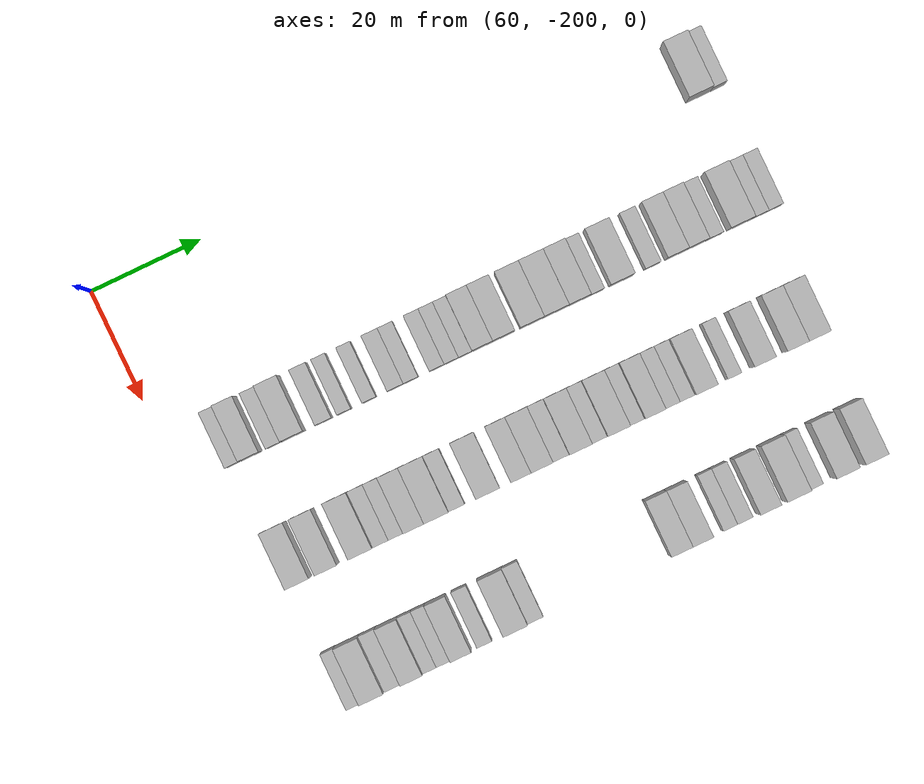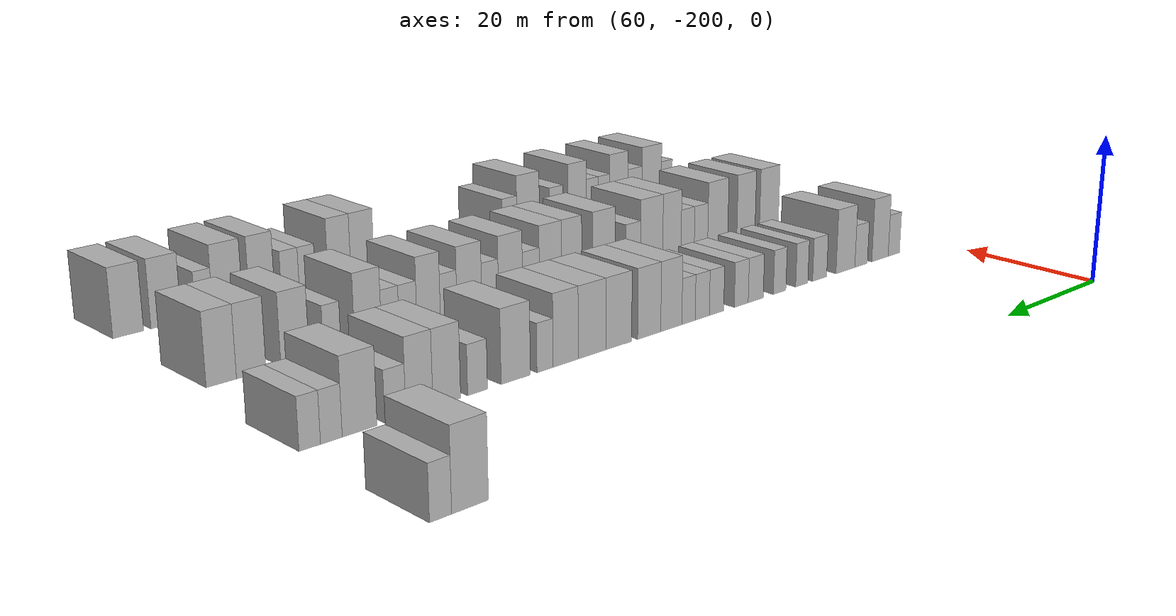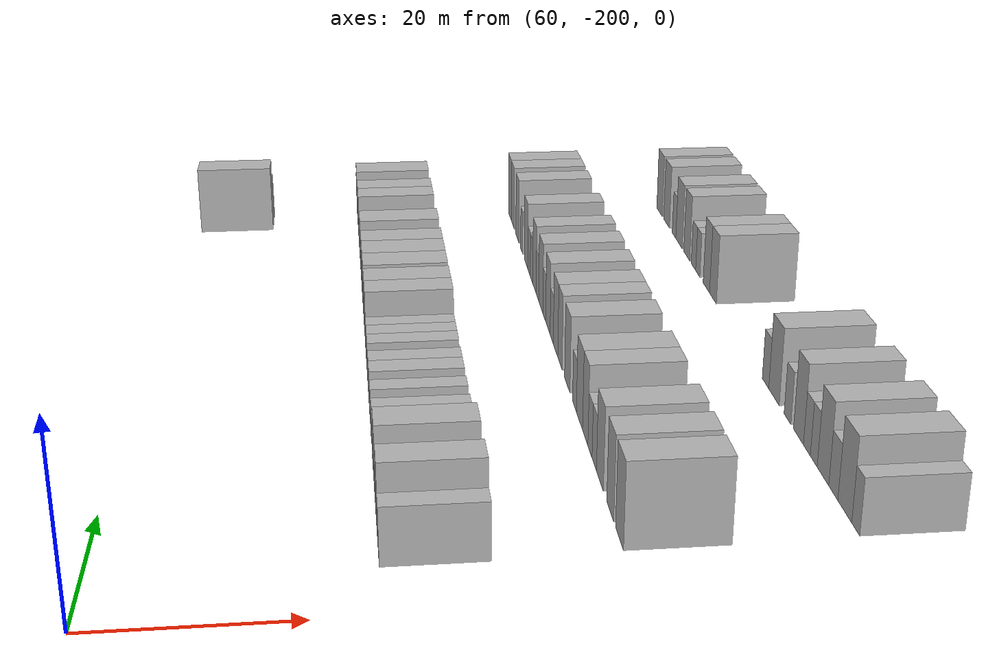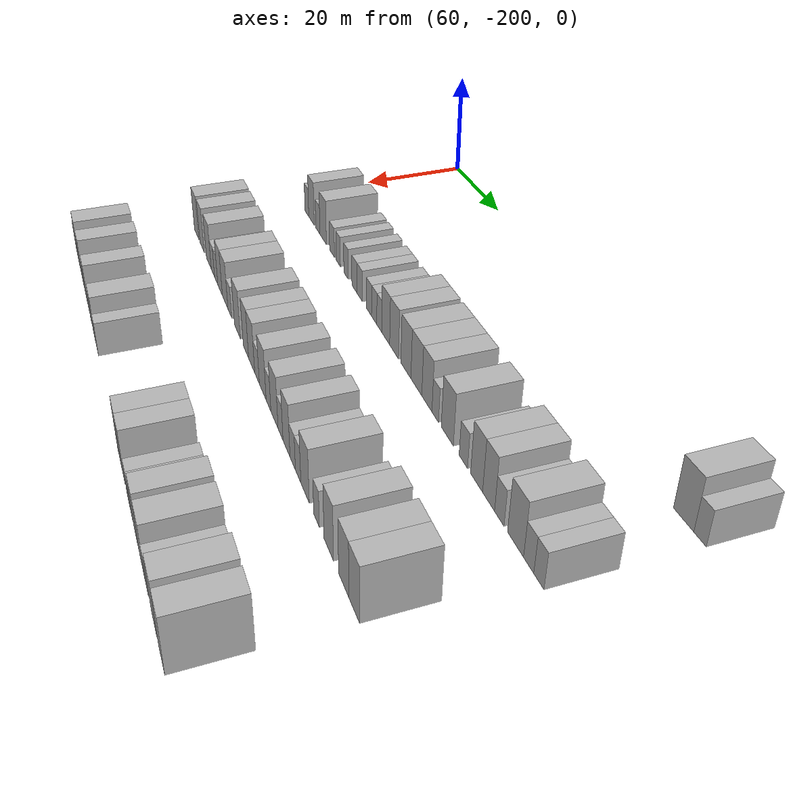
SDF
<sdf version="1.6">
 <world name="default">
  <model name="building_447">
   <static>1</static>
   <pose>69.0000 -95.7952 0 0.000000 0.000000 0.000000</pose>
   <link name="link">
    <pose>0 0 4.50 0 0 0</pose>
    <collision name="collision"><geometry><box><size>10.0000 4.4595 9.0000</size></box></geometry></collision>
    <visual name="visual">
     <cast_shadows>0</cast_shadows>
     <geometry><box><size>10.0000 4.4595 9.0000</size></box></geometry>
     <material>
      <script>
       <uri>model://HANNAS_wall/materials/scripts</uri>
       <uri>model://HANNAS_wall/materials/textures</uri>
       <name>vrc/HANNAS_wall</name>
      </script>
     </material>
    </visual>
   </link>
  </model>
  <model name="building_448">
   <static>1</static>
   <pose>69.0000 -92.2520 0 0.000000 0.000000 0.000000</pose>
   <link name="link">
    <pose>0 0 3.00 0 0 0</pose>
    <collision name="collision"><geometry><box><size>10.0000 2.6271 6.0000</size></box></geometry></collision>
    <visual name="visual">
     <cast_shadows>0</cast_shadows>
     <geometry><box><size>10.0000 2.6271 6.0000</size></box></geometry>
     <material>
      <script>
       <uri>model://HANNAS_wall/materials/scripts</uri>
       <uri>model://HANNAS_wall/materials/textures</uri>
       <name>vrc/HANNAS_wall</name>
      </script>
     </material>
    </visual>
   </link>
  </model>
  <model name="building_615">
   <static>1</static>
   <pose>91.0000 -190.7273 0 0.000000 0.000000 0.000000</pose>
   <link name="link">
    <pose>0 0 3.00 0 0 0</pose>
    <collision name="collision"><geometry><box><size>10.0000 2.6208 6.0000</size></box></geometry></collision>
    <visual name="visual">
     <cast_shadows>0</cast_shadows>
     <geometry><box><size>10.0000 2.6208 6.0000</size></box></geometry>
     <material>
      <script>
       <uri>model://HANNAS_wall/materials/scripts</uri>
       <uri>model://HANNAS_wall/materials/textures</uri>
       <name>vrc/HANNAS_wall</name>
      </script>
     </material>
    </visual>
   </link>
  </model>
  <model name="building_616">
   <static>1</static>
   <pose>91.0000 -187.5554 0 0.000000 0.000000 0.000000</pose>
   <link name="link">
    <pose>0 0 4.50 0 0 0</pose>
    <collision name="collision"><geometry><box><size>10.0000 3.7229 9.0000</size></box></geometry></collision>
    <visual name="visual">
     <cast_shadows>0</cast_shadows>
     <geometry><box><size>10.0000 3.7229 9.0000</size></box></geometry>
     <material>
      <script>
       <uri>model://HANNAS_wall/materials/scripts</uri>
       <uri>model://HANNAS_wall/materials/textures</uri>
       <name>vrc/HANNAS_wall</name>
      </script>
     </material>
    </visual>
   </link>
  </model>
  <model name="building_617">
   <static>1</static>
   <pose>91.0000 -183.2982 0 0.000000 0.000000 0.000000</pose>
   <link name="link">
    <pose>0 0 3.00 0 0 0</pose>
    <collision name="collision"><geometry><box><size>10.0000 2.7916 6.0000</size></box></geometry></collision>
    <visual name="visual">
     <cast_shadows>0</cast_shadows>
     <geometry><box><size>10.0000 2.7916 6.0000</size></box></geometry>
     <material>
      <script>
       <uri>model://HANNAS_wall/materials/scripts</uri>
       <uri>model://HANNAS_wall/materials/textures</uri>
       <name>vrc/HANNAS_wall</name>
      </script>
     </material>
    </visual>
   </link>
  </model>
  <model name="building_618">
   <static>1</static>
   <pose>91.0000 -179.8467 0 0.000000 0.000000 0.000000</pose>
   <link name="link">
    <pose>0 0 4.50 0 0 0</pose>
    <collision name="collision"><geometry><box><size>10.0000 4.1114 9.0000</size></box></geometry></collision>
    <visual name="visual">
     <cast_shadows>0</cast_shadows>
     <geometry><box><size>10.0000 4.1114 9.0000</size></box></geometry>
     <material>
      <script>
       <uri>model://HANNAS_wall/materials/scripts</uri>
       <uri>model://HANNAS_wall/materials/textures</uri>
       <name>vrc/HANNAS_wall</name>
      </script>
     </material>
    </visual>
   </link>
  </model>
  <model name="building_619">
   <static>1</static>
   <pose>91.0000 -174.3035 0 0.000000 0.000000 0.000000</pose>
   <link name="link">
    <pose>0 0 3.00 0 0 0</pose>
    <collision name="collision"><geometry><box><size>10.0000 2.9749 6.0000</size></box></geometry></collision>
    <visual name="visual">
     <cast_shadows>0</cast_shadows>
     <geometry><box><size>10.0000 2.9749 6.0000</size></box></geometry>
     <material>
      <script>
       <uri>model://HANNAS_wall/materials/scripts</uri>
       <uri>model://HANNAS_wall/materials/textures</uri>
       <name>vrc/HANNAS_wall</name>
      </script>
     </material>
    </visual>
   </link>
  </model>
  <model name="building_620">
   <static>1</static>
   <pose>91.0000 -170.5631 0 0.000000 0.000000 0.000000</pose>
   <link name="link">
    <pose>0 0 3.00 0 0 0</pose>
    <collision name="collision"><geometry><box><size>10.0000 2.5060 6.0000</size></box></geometry></collision>
    <visual name="visual">
     <cast_shadows>0</cast_shadows>
     <geometry><box><size>10.0000 2.5060 6.0000</size></box></geometry>
     <material>
      <script>
       <uri>model://HANNAS_wall/materials/scripts</uri>
       <uri>model://HANNAS_wall/materials/textures</uri>
       <name>vrc/HANNAS_wall</name>
      </script>
     </material>
    </visual>
   </link>
  </model>
  <model name="building_621">
   <static>1</static>
   <pose>91.0000 -166.0470 0 0.000000 0.000000 0.000000</pose>
   <link name="link">
    <pose>0 0 3.00 0 0 0</pose>
    <collision name="collision"><geometry><box><size>10.0000 2.5261 6.0000</size></box></geometry></collision>
    <visual name="visual">
     <cast_shadows>0</cast_shadows>
     <geometry><box><size>10.0000 2.5261 6.0000</size></box></geometry>
     <material>
      <script>
       <uri>model://HANNAS_wall/materials/scripts</uri>
       <uri>model://HANNAS_wall/materials/textures</uri>
       <name>vrc/HANNAS_wall</name>
      </script>
     </material>
    </visual>
   </link>
  </model>
  <model name="building_622">
   <static>1</static>
   <pose>91.0000 -161.3172 0 0.000000 0.000000 0.000000</pose>
   <link name="link">
    <pose>0 0 3.00 0 0 0</pose>
    <collision name="collision"><geometry><box><size>10.0000 2.9335 6.0000</size></box></geometry></collision>
    <visual name="visual">
     <cast_shadows>0</cast_shadows>
     <geometry><box><size>10.0000 2.9335 6.0000</size></box></geometry>
     <material>
      <script>
       <uri>model://HANNAS_wall/materials/scripts</uri>
       <uri>model://HANNAS_wall/materials/textures</uri>
       <name>vrc/HANNAS_wall</name>
      </script>
     </material>
    </visual>
   </link>
  </model>
  <model name="building_623">
   <static>1</static>
   <pose>91.0000 -158.5112 0 0.000000 0.000000 0.000000</pose>
   <link name="link">
    <pose>0 0 3.00 0 0 0</pose>
    <collision name="collision"><geometry><box><size>10.0000 2.6784 6.0000</size></box></geometry></collision>
    <visual name="visual">
     <cast_shadows>0</cast_shadows>
     <geometry><box><size>10.0000 2.6784 6.0000</size></box></geometry>
     <material>
      <script>
       <uri>model://HANNAS_wall/materials/scripts</uri>
       <uri>model://HANNAS_wall/materials/textures</uri>
       <name>vrc/HANNAS_wall</name>
      </script>
     </material>
    </visual>
   </link>
  </model>
  <model name="building_624">
   <static>1</static>
   <pose>91.0000 -153.8293 0 0.000000 0.000000 0.000000</pose>
   <link name="link">
    <pose>0 0 3.00 0 0 0</pose>
    <collision name="collision"><geometry><box><size>10.0000 2.6855 6.0000</size></box></geometry></collision>
    <visual name="visual">
     <cast_shadows>0</cast_shadows>
     <geometry><box><size>10.0000 2.6855 6.0000</size></box></geometry>
     <material>
      <script>
       <uri>model://HANNAS_wall/materials/scripts</uri>
       <uri>model://HANNAS_wall/materials/textures</uri>
       <name>vrc/HANNAS_wall</name>
      </script>
     </material>
    </visual>
   </link>
  </model>
  <model name="building_625">
   <static>1</static>
   <pose>91.0000 -151.1893 0 0.000000 0.000000 0.000000</pose>
   <link name="link">
    <pose>0 0 3.00 0 0 0</pose>
    <collision name="collision"><geometry><box><size>10.0000 2.5946 6.0000</size></box></geometry></collision>
    <visual name="visual">
     <cast_shadows>0</cast_shadows>
     <geometry><box><size>10.0000 2.5946 6.0000</size></box></geometry>
     <material>
      <script>
       <uri>model://HANNAS_wall/materials/scripts</uri>
       <uri>model://HANNAS_wall/materials/textures</uri>
       <name>vrc/HANNAS_wall</name>
      </script>
     </material>
    </visual>
   </link>
  </model>
  <model name="building_626">
   <static>1</static>
   <pose>91.0000 -148.6901 0 0.000000 0.000000 0.000000</pose>
   <link name="link">
    <pose>0 0 3.00 0 0 0</pose>
    <collision name="collision"><geometry><box><size>10.0000 2.4036 6.0000</size></box></geometry></collision>
    <visual name="visual">
     <cast_shadows>0</cast_shadows>
     <geometry><box><size>10.0000 2.4036 6.0000</size></box></geometry>
     <material>
      <script>
       <uri>model://HANNAS_wall/materials/scripts</uri>
       <uri>model://HANNAS_wall/materials/textures</uri>
       <name>vrc/HANNAS_wall</name>
      </script>
     </material>
    </visual>
   </link>
  </model>
  <model name="building_627">
   <static>1</static>
   <pose>91.0000 -145.6228 0 0.000000 0.000000 0.000000</pose>
   <link name="link">
    <pose>0 0 4.50 0 0 0</pose>
    <collision name="collision"><geometry><box><size>10.0000 3.7310 9.0000</size></box></geometry></collision>
    <visual name="visual">
     <cast_shadows>0</cast_shadows>
     <geometry><box><size>10.0000 3.7310 9.0000</size></box></geometry>
     <material>
      <script>
       <uri>model://HANNAS_wall/materials/scripts</uri>
       <uri>model://HANNAS_wall/materials/textures</uri>
       <name>vrc/HANNAS_wall</name>
      </script>
     </material>
    </visual>
   </link>
  </model>
  <model name="building_628">
   <static>1</static>
   <pose>91.0000 -141.7617 0 0.000000 0.000000 0.000000</pose>
   <link name="link">
    <pose>0 0 4.50 0 0 0</pose>
    <collision name="collision"><geometry><box><size>10.0000 3.9912 9.0000</size></box></geometry></collision>
    <visual name="visual">
     <cast_shadows>0</cast_shadows>
     <geometry><box><size>10.0000 3.9912 9.0000</size></box></geometry>
     <material>
      <script>
       <uri>model://HANNAS_wall/materials/scripts</uri>
       <uri>model://HANNAS_wall/materials/textures</uri>
       <name>vrc/HANNAS_wall</name>
      </script>
     </material>
    </visual>
   </link>
  </model>
  <model name="building_629">
   <static>1</static>
   <pose>91.0000 -136.6023 0 0.000000 0.000000 0.000000</pose>
   <link name="link">
    <pose>0 0 4.50 0 0 0</pose>
    <collision name="collision"><geometry><box><size>10.0000 4.3276 9.0000</size></box></geometry></collision>
    <visual name="visual">
     <cast_shadows>0</cast_shadows>
     <geometry><box><size>10.0000 4.3276 9.0000</size></box></geometry>
     <material>
      <script>
       <uri>model://HANNAS_wall/materials/scripts</uri>
       <uri>model://HANNAS_wall/materials/textures</uri>
       <name>vrc/HANNAS_wall</name>
      </script>
     </material>
    </visual>
   </link>
  </model>
  <model name="building_630">
   <static>1</static>
   <pose>91.0000 -132.2145 0 0.000000 0.000000 0.000000</pose>
   <link name="link">
    <pose>0 0 4.50 0 0 0</pose>
    <collision name="collision"><geometry><box><size>10.0000 4.4481 9.0000</size></box></geometry></collision>
    <visual name="visual">
     <cast_shadows>0</cast_shadows>
     <geometry><box><size>10.0000 4.4481 9.0000</size></box></geometry>
     <material>
      <script>
       <uri>model://HANNAS_wall/materials/scripts</uri>
       <uri>model://HANNAS_wall/materials/textures</uri>
       <name>vrc/HANNAS_wall</name>
      </script>
     </material>
    </visual>
   </link>
  </model>
  <model name="building_631">
   <static>1</static>
   <pose>91.0000 -128.0059 0 0.000000 0.000000 0.000000</pose>
   <link name="link">
    <pose>0 0 4.50 0 0 0</pose>
    <collision name="collision"><geometry><box><size>10.0000 3.9689 9.0000</size></box></geometry></collision>
    <visual name="visual">
     <cast_shadows>0</cast_shadows>
     <geometry><box><size>10.0000 3.9689 9.0000</size></box></geometry>
     <material>
      <script>
       <uri>model://HANNAS_wall/materials/scripts</uri>
       <uri>model://HANNAS_wall/materials/textures</uri>
       <name>vrc/HANNAS_wall</name>
      </script>
     </material>
    </visual>
   </link>
  </model>
  <model name="building_632">
   <static>1</static>
   <pose>91.0000 -124.7766 0 0.000000 0.000000 0.000000</pose>
   <link name="link">
    <pose>0 0 3.00 0 0 0</pose>
    <collision name="collision"><geometry><box><size>10.0000 2.4898 6.0000</size></box></geometry></collision>
    <visual name="visual">
     <cast_shadows>0</cast_shadows>
     <geometry><box><size>10.0000 2.4898 6.0000</size></box></geometry>
     <material>
      <script>
       <uri>model://HANNAS_wall/materials/scripts</uri>
       <uri>model://HANNAS_wall/materials/textures</uri>
       <name>vrc/HANNAS_wall</name>
      </script>
     </material>
    </visual>
   </link>
  </model>
  <model name="building_633">
   <static>1</static>
   <pose>91.0000 -120.3469 0 0.000000 0.000000 0.000000</pose>
   <link name="link">
    <pose>0 0 4.50 0 0 0</pose>
    <collision name="collision"><geometry><box><size>10.0000 4.3695 9.0000</size></box></geometry></collision>
    <visual name="visual">
     <cast_shadows>0</cast_shadows>
     <geometry><box><size>10.0000 4.3695 9.0000</size></box></geometry>
     <material>
      <script>
       <uri>model://HANNAS_wall/materials/scripts</uri>
       <uri>model://HANNAS_wall/materials/textures</uri>
       <name>vrc/HANNAS_wall</name>
      </script>
     </material>
    </visual>
   </link>
  </model>
  <model name="building_634">
   <static>1</static>
   <pose>91.0000 -114.7452 0 0.000000 0.000000 0.000000</pose>
   <link name="link">
    <pose>0 0 3.00 0 0 0</pose>
    <collision name="collision"><geometry><box><size>10.0000 2.8340 6.0000</size></box></geometry></collision>
    <visual name="visual">
     <cast_shadows>0</cast_shadows>
     <geometry><box><size>10.0000 2.8340 6.0000</size></box></geometry>
     <material>
      <script>
       <uri>model://HANNAS_wall/materials/scripts</uri>
       <uri>model://HANNAS_wall/materials/textures</uri>
       <name>vrc/HANNAS_wall</name>
      </script>
     </material>
    </visual>
   </link>
  </model>
  <model name="building_635">
   <static>1</static>
   <pose>91.0000 -110.4079 0 0.000000 0.000000 0.000000</pose>
   <link name="link">
    <pose>0 0 4.50 0 0 0</pose>
    <collision name="collision"><geometry><box><size>10.0000 3.8406 9.0000</size></box></geometry></collision>
    <visual name="visual">
     <cast_shadows>0</cast_shadows>
     <geometry><box><size>10.0000 3.8406 9.0000</size></box></geometry>
     <material>
      <script>
       <uri>model://HANNAS_wall/materials/scripts</uri>
       <uri>model://HANNAS_wall/materials/textures</uri>
       <name>vrc/HANNAS_wall</name>
      </script>
     </material>
    </visual>
   </link>
  </model>
  <model name="building_636">
   <static>1</static>
   <pose>91.0000 -106.6546 0 0.000000 0.000000 0.000000</pose>
   <link name="link">
    <pose>0 0 4.50 0 0 0</pose>
    <collision name="collision"><geometry><box><size>10.0000 3.6660 9.0000</size></box></geometry></collision>
    <visual name="visual">
     <cast_shadows>0</cast_shadows>
     <geometry><box><size>10.0000 3.6660 9.0000</size></box></geometry>
     <material>
      <script>
       <uri>model://HANNAS_wall/materials/scripts</uri>
       <uri>model://HANNAS_wall/materials/textures</uri>
       <name>vrc/HANNAS_wall</name>
      </script>
     </material>
    </visual>
   </link>
  </model>
  <model name="building_637">
   <static>1</static>
   <pose>91.0000 -103.4261 0 0.000000 0.000000 0.000000</pose>
   <link name="link">
    <pose>0 0 3.00 0 0 0</pose>
    <collision name="collision"><geometry><box><size>10.0000 2.7910 6.0000</size></box></geometry></collision>
    <visual name="visual">
     <cast_shadows>0</cast_shadows>
     <geometry><box><size>10.0000 2.7910 6.0000</size></box></geometry>
     <material>
      <script>
       <uri>model://HANNAS_wall/materials/scripts</uri>
       <uri>model://HANNAS_wall/materials/textures</uri>
       <name>vrc/HANNAS_wall</name>
      </script>
     </material>
    </visual>
   </link>
  </model>
  <model name="building_638">
   <static>1</static>
   <pose>91.0000 -98.8060 0 0.000000 0.000000 0.000000</pose>
   <link name="link">
    <pose>0 0 4.50 0 0 0</pose>
    <collision name="collision"><geometry><box><size>10.0000 4.4492 9.0000</size></box></geometry></collision>
    <visual name="visual">
     <cast_shadows>0</cast_shadows>
     <geometry><box><size>10.0000 4.4492 9.0000</size></box></geometry>
     <material>
      <script>
       <uri>model://HANNAS_wall/materials/scripts</uri>
       <uri>model://HANNAS_wall/materials/textures</uri>
       <name>vrc/HANNAS_wall</name>
      </script>
     </material>
    </visual>
   </link>
  </model>
  <model name="building_639">
   <static>1</static>
   <pose>91.0000 -95.2316 0 0.000000 0.000000 0.000000</pose>
   <link name="link">
    <pose>0 0 3.00 0 0 0</pose>
    <collision name="collision"><geometry><box><size>10.0000 2.6996 6.0000</size></box></geometry></collision>
    <visual name="visual">
     <cast_shadows>0</cast_shadows>
     <geometry><box><size>10.0000 2.6996 6.0000</size></box></geometry>
     <material>
      <script>
       <uri>model://HANNAS_wall/materials/scripts</uri>
       <uri>model://HANNAS_wall/materials/textures</uri>
       <name>vrc/HANNAS_wall</name>
      </script>
     </material>
    </visual>
   </link>
  </model>
  <model name="building_640">
   <static>1</static>
   <pose>91.0000 -92.5688 0 0.000000 0.000000 0.000000</pose>
   <link name="link">
    <pose>0 0 3.00 0 0 0</pose>
    <collision name="collision"><geometry><box><size>10.0000 2.6260 6.0000</size></box></geometry></collision>
    <visual name="visual">
     <cast_shadows>0</cast_shadows>
     <geometry><box><size>10.0000 2.6260 6.0000</size></box></geometry>
     <material>
      <script>
       <uri>model://HANNAS_wall/materials/scripts</uri>
       <uri>model://HANNAS_wall/materials/textures</uri>
       <name>vrc/HANNAS_wall</name>
      </script>
     </material>
    </visual>
   </link>
  </model>
  <model name="building_813">
   <static>1</static>
   <pose>113.0000 -189.2277 0 0.000000 0.000000 0.000000</pose>
   <link name="link">
    <pose>0 0 4.50 0 0 0</pose>
    <collision name="collision"><geometry><box><size>10.0000 4.2965 9.0000</size></box></geometry></collision>
    <visual name="visual">
     <cast_shadows>0</cast_shadows>
     <geometry><box><size>10.0000 4.2965 9.0000</size></box></geometry>
     <material>
      <script>
       <uri>model://HANNAS_wall/materials/scripts</uri>
       <uri>model://HANNAS_wall/materials/textures</uri>
       <name>vrc/HANNAS_wall</name>
      </script>
     </material>
    </visual>
   </link>
  </model>
  <model name="building_814">
   <static>1</static>
   <pose>113.0000 -184.0678 0 0.000000 0.000000 0.000000</pose>
   <link name="link">
    <pose>0 0 4.50 0 0 0</pose>
    <collision name="collision"><geometry><box><size>10.0000 4.0232 9.0000</size></box></geometry></collision>
    <visual name="visual">
     <cast_shadows>0</cast_shadows>
     <geometry><box><size>10.0000 4.0232 9.0000</size></box></geometry>
     <material>
      <script>
       <uri>model://HANNAS_wall/materials/scripts</uri>
       <uri>model://HANNAS_wall/materials/textures</uri>
       <name>vrc/HANNAS_wall</name>
      </script>
     </material>
    </visual>
   </link>
  </model>
  <model name="building_815">
   <static>1</static>
   <pose>113.0000 -177.9132 0 0.000000 0.000000 0.000000</pose>
   <link name="link">
    <pose>0 0 4.50 0 0 0</pose>
    <collision name="collision"><geometry><box><size>10.0000 4.2861 9.0000</size></box></geometry></collision>
    <visual name="visual">
     <cast_shadows>0</cast_shadows>
     <geometry><box><size>10.0000 4.2861 9.0000</size></box></geometry>
     <material>
      <script>
       <uri>model://HANNAS_wall/materials/scripts</uri>
       <uri>model://HANNAS_wall/materials/textures</uri>
       <name>vrc/HANNAS_wall</name>
      </script>
     </material>
    </visual>
   </link>
  </model>
  <model name="building_816">
   <static>1</static>
   <pose>113.0000 -174.3600 0 0.000000 0.000000 0.000000</pose>
   <link name="link">
    <pose>0 0 3.00 0 0 0</pose>
    <collision name="collision"><geometry><box><size>10.0000 2.8203 6.0000</size></box></geometry></collision>
    <visual name="visual">
     <cast_shadows>0</cast_shadows>
     <geometry><box><size>10.0000 2.8203 6.0000</size></box></geometry>
     <material>
      <script>
       <uri>model://HANNAS_wall/materials/scripts</uri>
       <uri>model://HANNAS_wall/materials/textures</uri>
       <name>vrc/HANNAS_wall</name>
      </script>
     </material>
    </visual>
   </link>
  </model>
  <model name="building_817">
   <static>1</static>
   <pose>113.0000 -171.5809 0 0.000000 0.000000 0.000000</pose>
   <link name="link">
    <pose>0 0 3.00 0 0 0</pose>
    <collision name="collision"><geometry><box><size>10.0000 2.7380 6.0000</size></box></geometry></collision>
    <visual name="visual">
     <cast_shadows>0</cast_shadows>
     <geometry><box><size>10.0000 2.7380 6.0000</size></box></geometry>
     <material>
      <script>
       <uri>model://HANNAS_wall/materials/scripts</uri>
       <uri>model://HANNAS_wall/materials/textures</uri>
       <name>vrc/HANNAS_wall</name>
      </script>
     </material>
    </visual>
   </link>
  </model>
  <model name="building_818">
   <static>1</static>
   <pose>113.0000 -168.3494 0 0.000000 0.000000 0.000000</pose>
   <link name="link">
    <pose>0 0 4.50 0 0 0</pose>
    <collision name="collision"><geometry><box><size>10.0000 3.7250 9.0000</size></box></geometry></collision>
    <visual name="visual">
     <cast_shadows>0</cast_shadows>
     <geometry><box><size>10.0000 3.7250 9.0000</size></box></geometry>
     <material>
      <script>
       <uri>model://HANNAS_wall/materials/scripts</uri>
       <uri>model://HANNAS_wall/materials/textures</uri>
       <name>vrc/HANNAS_wall</name>
      </script>
     </material>
    </visual>
   </link>
  </model>
  <model name="building_819">
   <static>1</static>
   <pose>113.0000 -164.2960 0 0.000000 0.000000 0.000000</pose>
   <link name="link">
    <pose>0 0 4.50 0 0 0</pose>
    <collision name="collision"><geometry><box><size>10.0000 4.3817 9.0000</size></box></geometry></collision>
    <visual name="visual">
     <cast_shadows>0</cast_shadows>
     <geometry><box><size>10.0000 4.3817 9.0000</size></box></geometry>
     <material>
      <script>
       <uri>model://HANNAS_wall/materials/scripts</uri>
       <uri>model://HANNAS_wall/materials/textures</uri>
       <name>vrc/HANNAS_wall</name>
      </script>
     </material>
    </visual>
   </link>
  </model>
  <model name="building_820">
   <static>1</static>
   <pose>113.0000 -160.6577 0 0.000000 0.000000 0.000000</pose>
   <link name="link">
    <pose>0 0 3.00 0 0 0</pose>
    <collision name="collision"><geometry><box><size>10.0000 2.8949 6.0000</size></box></geometry></collision>
    <visual name="visual">
     <cast_shadows>0</cast_shadows>
     <geometry><box><size>10.0000 2.8949 6.0000</size></box></geometry>
     <material>
      <script>
       <uri>model://HANNAS_wall/materials/scripts</uri>
       <uri>model://HANNAS_wall/materials/textures</uri>
       <name>vrc/HANNAS_wall</name>
      </script>
     </material>
    </visual>
   </link>
  </model>
  <model name="building_821">
   <static>1</static>
   <pose>113.0000 -155.0704 0 0.000000 0.000000 0.000000</pose>
   <link name="link">
    <pose>0 0 4.50 0 0 0</pose>
    <collision name="collision"><geometry><box><size>10.0000 4.2797 9.0000</size></box></geometry></collision>
    <visual name="visual">
     <cast_shadows>0</cast_shadows>
     <geometry><box><size>10.0000 4.2797 9.0000</size></box></geometry>
     <material>
      <script>
       <uri>model://HANNAS_wall/materials/scripts</uri>
       <uri>model://HANNAS_wall/materials/textures</uri>
       <name>vrc/HANNAS_wall</name>
      </script>
     </material>
    </visual>
   </link>
  </model>
  <model name="building_822">
   <static>1</static>
   <pose>113.0000 -149.1147 0 0.000000 0.000000 0.000000</pose>
   <link name="link">
    <pose>0 0 4.50 0 0 0</pose>
    <collision name="collision"><geometry><box><size>10.0000 3.6318 9.0000</size></box></geometry></collision>
    <visual name="visual">
     <cast_shadows>0</cast_shadows>
     <geometry><box><size>10.0000 3.6318 9.0000</size></box></geometry>
     <material>
      <script>
       <uri>model://HANNAS_wall/materials/scripts</uri>
       <uri>model://HANNAS_wall/materials/textures</uri>
       <name>vrc/HANNAS_wall</name>
      </script>
     </material>
    </visual>
   </link>
  </model>
  <model name="building_823">
   <static>1</static>
   <pose>113.0000 -145.3166 0 0.000000 0.000000 0.000000</pose>
   <link name="link">
    <pose>0 0 4.50 0 0 0</pose>
    <collision name="collision"><geometry><box><size>10.0000 3.9644 9.0000</size></box></geometry></collision>
    <visual name="visual">
     <cast_shadows>0</cast_shadows>
     <geometry><box><size>10.0000 3.9644 9.0000</size></box></geometry>
     <material>
      <script>
       <uri>model://HANNAS_wall/materials/scripts</uri>
       <uri>model://HANNAS_wall/materials/textures</uri>
       <name>vrc/HANNAS_wall</name>
      </script>
     </material>
    </visual>
   </link>
  </model>
  <model name="building_824">
   <static>1</static>
   <pose>113.0000 -141.8684 0 0.000000 0.000000 0.000000</pose>
   <link name="link">
    <pose>0 0 3.00 0 0 0</pose>
    <collision name="collision"><geometry><box><size>10.0000 2.9321 6.0000</size></box></geometry></collision>
    <visual name="visual">
     <cast_shadows>0</cast_shadows>
     <geometry><box><size>10.0000 2.9321 6.0000</size></box></geometry>
     <material>
      <script>
       <uri>model://HANNAS_wall/materials/scripts</uri>
       <uri>model://HANNAS_wall/materials/textures</uri>
       <name>vrc/HANNAS_wall</name>
      </script>
     </material>
    </visual>
   </link>
  </model>
  <model name="building_825">
   <static>1</static>
   <pose>113.0000 -138.3527 0 0.000000 0.000000 0.000000</pose>
   <link name="link">
    <pose>0 0 4.50 0 0 0</pose>
    <collision name="collision"><geometry><box><size>10.0000 4.0992 9.0000</size></box></geometry></collision>
    <visual name="visual">
     <cast_shadows>0</cast_shadows>
     <geometry><box><size>10.0000 4.0992 9.0000</size></box></geometry>
     <material>
      <script>
       <uri>model://HANNAS_wall/materials/scripts</uri>
       <uri>model://HANNAS_wall/materials/textures</uri>
       <name>vrc/HANNAS_wall</name>
      </script>
     </material>
    </visual>
   </link>
  </model>
  <model name="building_826">
   <static>1</static>
   <pose>113.0000 -134.9078 0 0.000000 0.000000 0.000000</pose>
   <link name="link">
    <pose>0 0 3.00 0 0 0</pose>
    <collision name="collision"><geometry><box><size>10.0000 2.7906 6.0000</size></box></geometry></collision>
    <visual name="visual">
     <cast_shadows>0</cast_shadows>
     <geometry><box><size>10.0000 2.7906 6.0000</size></box></geometry>
     <material>
      <script>
       <uri>model://HANNAS_wall/materials/scripts</uri>
       <uri>model://HANNAS_wall/materials/textures</uri>
       <name>vrc/HANNAS_wall</name>
      </script>
     </material>
    </visual>
   </link>
  </model>
  <model name="building_827">
   <static>1</static>
   <pose>113.0000 -131.4879 0 0.000000 0.000000 0.000000</pose>
   <link name="link">
    <pose>0 0 4.50 0 0 0</pose>
    <collision name="collision"><geometry><box><size>10.0000 4.0492 9.0000</size></box></geometry></collision>
    <visual name="visual">
     <cast_shadows>0</cast_shadows>
     <geometry><box><size>10.0000 4.0492 9.0000</size></box></geometry>
     <material>
      <script>
       <uri>model://HANNAS_wall/materials/scripts</uri>
       <uri>model://HANNAS_wall/materials/textures</uri>
       <name>vrc/HANNAS_wall</name>
      </script>
     </material>
    </visual>
   </link>
  </model>
  <model name="building_828">
   <static>1</static>
   <pose>113.0000 -128.1333 0 0.000000 0.000000 0.000000</pose>
   <link name="link">
    <pose>0 0 3.00 0 0 0</pose>
    <collision name="collision"><geometry><box><size>10.0000 2.6600 6.0000</size></box></geometry></collision>
    <visual name="visual">
     <cast_shadows>0</cast_shadows>
     <geometry><box><size>10.0000 2.6600 6.0000</size></box></geometry>
     <material>
      <script>
       <uri>model://HANNAS_wall/materials/scripts</uri>
       <uri>model://HANNAS_wall/materials/textures</uri>
       <name>vrc/HANNAS_wall</name>
      </script>
     </material>
    </visual>
   </link>
  </model>
  <model name="building_829">
   <static>1</static>
   <pose>113.0000 -124.9658 0 0.000000 0.000000 0.000000</pose>
   <link name="link">
    <pose>0 0 4.50 0 0 0</pose>
    <collision name="collision"><geometry><box><size>10.0000 3.6750 9.0000</size></box></geometry></collision>
    <visual name="visual">
     <cast_shadows>0</cast_shadows>
     <geometry><box><size>10.0000 3.6750 9.0000</size></box></geometry>
     <material>
      <script>
       <uri>model://HANNAS_wall/materials/scripts</uri>
       <uri>model://HANNAS_wall/materials/textures</uri>
       <name>vrc/HANNAS_wall</name>
      </script>
     </material>
    </visual>
   </link>
  </model>
  <model name="building_830">
   <static>1</static>
   <pose>113.0000 -121.7583 0 0.000000 0.000000 0.000000</pose>
   <link name="link">
    <pose>0 0 3.00 0 0 0</pose>
    <collision name="collision"><geometry><box><size>10.0000 2.7401 6.0000</size></box></geometry></collision>
    <visual name="visual">
     <cast_shadows>0</cast_shadows>
     <geometry><box><size>10.0000 2.7401 6.0000</size></box></geometry>
     <material>
      <script>
       <uri>model://HANNAS_wall/materials/scripts</uri>
       <uri>model://HANNAS_wall/materials/textures</uri>
       <name>vrc/HANNAS_wall</name>
      </script>
     </material>
    </visual>
   </link>
  </model>
  <model name="building_831">
   <static>1</static>
   <pose>113.0000 -119.0590 0 0.000000 0.000000 0.000000</pose>
   <link name="link">
    <pose>0 0 3.00 0 0 0</pose>
    <collision name="collision"><geometry><box><size>10.0000 2.6586 6.0000</size></box></geometry></collision>
    <visual name="visual">
     <cast_shadows>0</cast_shadows>
     <geometry><box><size>10.0000 2.6586 6.0000</size></box></geometry>
     <material>
      <script>
       <uri>model://HANNAS_wall/materials/scripts</uri>
       <uri>model://HANNAS_wall/materials/textures</uri>
       <name>vrc/HANNAS_wall</name>
      </script>
     </material>
    </visual>
   </link>
  </model>
  <model name="building_832">
   <static>1</static>
   <pose>113.0000 -115.7500 0 0.000000 0.000000 0.000000</pose>
   <link name="link">
    <pose>0 0 4.50 0 0 0</pose>
    <collision name="collision"><geometry><box><size>10.0000 3.9593 9.0000</size></box></geometry></collision>
    <visual name="visual">
     <cast_shadows>0</cast_shadows>
     <geometry><box><size>10.0000 3.9593 9.0000</size></box></geometry>
     <material>
      <script>
       <uri>model://HANNAS_wall/materials/scripts</uri>
       <uri>model://HANNAS_wall/materials/textures</uri>
       <name>vrc/HANNAS_wall</name>
      </script>
     </material>
    </visual>
   </link>
  </model>
  <model name="building_833">
   <static>1</static>
   <pose>113.0000 -110.5253 0 0.000000 0.000000 0.000000</pose>
   <link name="link">
    <pose>0 0 3.00 0 0 0</pose>
    <collision name="collision"><geometry><box><size>10.0000 2.4903 6.0000</size></box></geometry></collision>
    <visual name="visual">
     <cast_shadows>0</cast_shadows>
     <geometry><box><size>10.0000 2.4903 6.0000</size></box></geometry>
     <material>
      <script>
       <uri>model://HANNAS_wall/materials/scripts</uri>
       <uri>model://HANNAS_wall/materials/textures</uri>
       <name>vrc/HANNAS_wall</name>
      </script>
     </material>
    </visual>
   </link>
  </model>
  <model name="building_834">
   <static>1</static>
   <pose>113.0000 -105.3228 0 0.000000 0.000000 0.000000</pose>
   <link name="link">
    <pose>0 0 4.50 0 0 0</pose>
    <collision name="collision"><geometry><box><size>10.0000 3.9147 9.0000</size></box></geometry></collision>
    <visual name="visual">
     <cast_shadows>0</cast_shadows>
     <geometry><box><size>10.0000 3.9147 9.0000</size></box></geometry>
     <material>
      <script>
       <uri>model://HANNAS_wall/materials/scripts</uri>
       <uri>model://HANNAS_wall/materials/textures</uri>
       <name>vrc/HANNAS_wall</name>
      </script>
     </material>
    </visual>
   </link>
  </model>
  <model name="building_835">
   <static>1</static>
   <pose>113.0000 -99.4088 0 0.000000 0.000000 0.000000</pose>
   <link name="link">
    <pose>0 0 4.50 0 0 0</pose>
    <collision name="collision"><geometry><box><size>10.0000 3.9133 9.0000</size></box></geometry></collision>
    <visual name="visual">
     <cast_shadows>0</cast_shadows>
     <geometry><box><size>10.0000 3.9133 9.0000</size></box></geometry>
     <material>
      <script>
       <uri>model://HANNAS_wall/materials/scripts</uri>
       <uri>model://HANNAS_wall/materials/textures</uri>
       <name>vrc/HANNAS_wall</name>
      </script>
     </material>
    </visual>
   </link>
  </model>
  <model name="building_836">
   <static>1</static>
   <pose>113.0000 -95.4962 0 0.000000 0.000000 0.000000</pose>
   <link name="link">
    <pose>0 0 4.50 0 0 0</pose>
    <collision name="collision"><geometry><box><size>10.0000 3.9120 9.0000</size></box></geometry></collision>
    <visual name="visual">
     <cast_shadows>0</cast_shadows>
     <geometry><box><size>10.0000 3.9120 9.0000</size></box></geometry>
     <material>
      <script>
       <uri>model://HANNAS_wall/materials/scripts</uri>
       <uri>model://HANNAS_wall/materials/textures</uri>
       <name>vrc/HANNAS_wall</name>
      </script>
     </material>
    </visual>
   </link>
  </model>
  <model name="building_1006">
   <static>1</static>
   <pose>135.0000 -189.7687 0 0.000000 0.000000 0.000000</pose>
   <link name="link">
    <pose>0 0 3.00 0 0 0</pose>
    <collision name="collision"><geometry><box><size>10.0000 2.4361 6.0000</size></box></geometry></collision>
    <visual name="visual">
     <cast_shadows>0</cast_shadows>
     <geometry><box><size>10.0000 2.4361 6.0000</size></box></geometry>
     <material>
      <script>
       <uri>model://HANNAS_wall/materials/scripts</uri>
       <uri>model://HANNAS_wall/materials/textures</uri>
       <name>vrc/HANNAS_wall</name>
      </script>
     </material>
    </visual>
   </link>
  </model>
  <model name="building_1007">
   <static>1</static>
   <pose>135.0000 -186.3601 0 0.000000 0.000000 0.000000</pose>
   <link name="link">
    <pose>0 0 4.50 0 0 0</pose>
    <collision name="collision"><geometry><box><size>10.0000 4.3810 9.0000</size></box></geometry></collision>
    <visual name="visual">
     <cast_shadows>0</cast_shadows>
     <geometry><box><size>10.0000 4.3810 9.0000</size></box></geometry>
     <material>
      <script>
       <uri>model://HANNAS_wall/materials/scripts</uri>
       <uri>model://HANNAS_wall/materials/textures</uri>
       <name>vrc/HANNAS_wall</name>
      </script>
     </material>
    </visual>
   </link>
  </model>
  <model name="building_1008">
   <static>1</static>
   <pose>135.0000 -182.6697 0 0.000000 0.000000 0.000000</pose>
   <link name="link">
    <pose>0 0 3.00 0 0 0</pose>
    <collision name="collision"><geometry><box><size>10.0000 2.9998 6.0000</size></box></geometry></collision>
    <visual name="visual">
     <cast_shadows>0</cast_shadows>
     <geometry><box><size>10.0000 2.9998 6.0000</size></box></geometry>
     <material>
      <script>
       <uri>model://HANNAS_wall/materials/scripts</uri>
       <uri>model://HANNAS_wall/materials/textures</uri>
       <name>vrc/HANNAS_wall</name>
      </script>
     </material>
    </visual>
   </link>
  </model>
  <model name="building_1009">
   <static>1</static>
   <pose>135.0000 -179.1853 0 0.000000 0.000000 0.000000</pose>
   <link name="link">
    <pose>0 0 4.50 0 0 0</pose>
    <collision name="collision"><geometry><box><size>10.0000 3.9691 9.0000</size></box></geometry></collision>
    <visual name="visual">
     <cast_shadows>0</cast_shadows>
     <geometry><box><size>10.0000 3.9691 9.0000</size></box></geometry>
     <material>
      <script>
       <uri>model://HANNAS_wall/materials/scripts</uri>
       <uri>model://HANNAS_wall/materials/textures</uri>
       <name>vrc/HANNAS_wall</name>
      </script>
     </material>
    </visual>
   </link>
  </model>
  <model name="building_1010">
   <static>1</static>
   <pose>135.0000 -175.9734 0 0.000000 0.000000 0.000000</pose>
   <link name="link">
    <pose>0 0 3.00 0 0 0</pose>
    <collision name="collision"><geometry><box><size>10.0000 2.4549 6.0000</size></box></geometry></collision>
    <visual name="visual">
     <cast_shadows>0</cast_shadows>
     <geometry><box><size>10.0000 2.4549 6.0000</size></box></geometry>
     <material>
      <script>
       <uri>model://HANNAS_wall/materials/scripts</uri>
       <uri>model://HANNAS_wall/materials/textures</uri>
       <name>vrc/HANNAS_wall</name>
      </script>
     </material>
    </visual>
   </link>
  </model>
  <model name="building_1011">
   <static>1</static>
   <pose>135.0000 -173.4861 0 0.000000 0.000000 0.000000</pose>
   <link name="link">
    <pose>0 0 3.00 0 0 0</pose>
    <collision name="collision"><geometry><box><size>10.0000 2.5196 6.0000</size></box></geometry></collision>
    <visual name="visual">
     <cast_shadows>0</cast_shadows>
     <geometry><box><size>10.0000 2.5196 6.0000</size></box></geometry>
     <material>
      <script>
       <uri>model://HANNAS_wall/materials/scripts</uri>
       <uri>model://HANNAS_wall/materials/textures</uri>
       <name>vrc/HANNAS_wall</name>
      </script>
     </material>
    </visual>
   </link>
  </model>
  <model name="building_1012">
   <static>1</static>
   <pose>135.0000 -170.3397 0 0.000000 0.000000 0.000000</pose>
   <link name="link">
    <pose>0 0 4.50 0 0 0</pose>
    <collision name="collision"><geometry><box><size>10.0000 3.7734 9.0000</size></box></geometry></collision>
    <visual name="visual">
     <cast_shadows>0</cast_shadows>
     <geometry><box><size>10.0000 3.7734 9.0000</size></box></geometry>
     <material>
      <script>
       <uri>model://HANNAS_wall/materials/scripts</uri>
       <uri>model://HANNAS_wall/materials/textures</uri>
       <name>vrc/HANNAS_wall</name>
      </script>
     </material>
    </visual>
   </link>
  </model>
  <model name="building_1013">
   <static>1</static>
   <pose>135.0000 -166.0954 0 0.000000 0.000000 0.000000</pose>
   <link name="link">
    <pose>0 0 3.00 0 0 0</pose>
    <collision name="collision"><geometry><box><size>10.0000 2.7150 6.0000</size></box></geometry></collision>
    <visual name="visual">
     <cast_shadows>0</cast_shadows>
     <geometry><box><size>10.0000 2.7150 6.0000</size></box></geometry>
     <material>
      <script>
       <uri>model://HANNAS_wall/materials/scripts</uri>
       <uri>model://HANNAS_wall/materials/textures</uri>
       <name>vrc/HANNAS_wall</name>
      </script>
     </material>
    </visual>
   </link>
  </model>
  <model name="building_1014">
   <static>1</static>
   <pose>135.0000 -160.5326 0 0.000000 0.000000 0.000000</pose>
   <link name="link">
    <pose>0 0 4.50 0 0 0</pose>
    <collision name="collision"><geometry><box><size>10.0000 4.4107 9.0000</size></box></geometry></collision>
    <visual name="visual">
     <cast_shadows>0</cast_shadows>
     <geometry><box><size>10.0000 4.4107 9.0000</size></box></geometry>
     <material>
      <script>
       <uri>model://HANNAS_wall/materials/scripts</uri>
       <uri>model://HANNAS_wall/materials/textures</uri>
       <name>vrc/HANNAS_wall</name>
      </script>
     </material>
    </visual>
   </link>
  </model>
  <model name="building_1015">
   <static>1</static>
   <pose>135.0000 -156.9138 0 0.000000 0.000000 0.000000</pose>
   <link name="link">
    <pose>0 0 3.00 0 0 0</pose>
    <collision name="collision"><geometry><box><size>10.0000 2.8267 6.0000</size></box></geometry></collision>
    <visual name="visual">
     <cast_shadows>0</cast_shadows>
     <geometry><box><size>10.0000 2.8267 6.0000</size></box></geometry>
     <material>
      <script>
       <uri>model://HANNAS_wall/materials/scripts</uri>
       <uri>model://HANNAS_wall/materials/textures</uri>
       <name>vrc/HANNAS_wall</name>
      </script>
     </material>
    </visual>
   </link>
  </model>
  <model name="building_1016">
   <static>1</static>
   <pose>135.0000 -130.6944 0 0.000000 0.000000 0.000000</pose>
   <link name="link">
    <pose>0 0 4.50 0 0 0</pose>
    <collision name="collision"><geometry><box><size>10.0000 3.8707 9.0000</size></box></geometry></collision>
    <visual name="visual">
     <cast_shadows>0</cast_shadows>
     <geometry><box><size>10.0000 3.8707 9.0000</size></box></geometry>
     <material>
      <script>
       <uri>model://HANNAS_wall/materials/scripts</uri>
       <uri>model://HANNAS_wall/materials/textures</uri>
       <name>vrc/HANNAS_wall</name>
      </script>
     </material>
    </visual>
   </link>
  </model>
  <model name="building_1017">
   <static>1</static>
   <pose>135.0000 -126.9068 0 0.000000 0.000000 0.000000</pose>
   <link name="link">
    <pose>0 0 4.50 0 0 0</pose>
    <collision name="collision"><geometry><box><size>10.0000 3.7046 9.0000</size></box></geometry></collision>
    <visual name="visual">
     <cast_shadows>0</cast_shadows>
     <geometry><box><size>10.0000 3.7046 9.0000</size></box></geometry>
     <material>
      <script>
       <uri>model://HANNAS_wall/materials/scripts</uri>
       <uri>model://HANNAS_wall/materials/textures</uri>
       <name>vrc/HANNAS_wall</name>
      </script>
     </material>
    </visual>
   </link>
  </model>
  <model name="building_1018">
   <static>1</static>
   <pose>135.0000 -121.7694 0 0.000000 0.000000 0.000000</pose>
   <link name="link">
    <pose>0 0 3.00 0 0 0</pose>
    <collision name="collision"><geometry><box><size>10.0000 2.5701 6.0000</size></box></geometry></collision>
    <visual name="visual">
     <cast_shadows>0</cast_shadows>
     <geometry><box><size>10.0000 2.5701 6.0000</size></box></geometry>
     <material>
      <script>
       <uri>model://HANNAS_wall/materials/scripts</uri>
       <uri>model://HANNAS_wall/materials/textures</uri>
       <name>vrc/HANNAS_wall</name>
      </script>
     </material>
    </visual>
   </link>
  </model>
  <model name="building_1019">
   <static>1</static>
   <pose>135.0000 -119.0967 0 0.000000 0.000000 0.000000</pose>
   <link name="link">
    <pose>0 0 3.00 0 0 0</pose>
    <collision name="collision"><geometry><box><size>10.0000 2.7754 6.0000</size></box></geometry></collision>
    <visual name="visual">
     <cast_shadows>0</cast_shadows>
     <geometry><box><size>10.0000 2.7754 6.0000</size></box></geometry>
     <material>
      <script>
       <uri>model://HANNAS_wall/materials/scripts</uri>
       <uri>model://HANNAS_wall/materials/textures</uri>
       <name>vrc/HANNAS_wall</name>
      </script>
     </material>
    </visual>
   </link>
  </model>
  <model name="building_1020">
   <static>1</static>
   <pose>135.0000 -114.7908 0 0.000000 0.000000 0.000000</pose>
   <link name="link">
    <pose>0 0 4.50 0 0 0</pose>
    <collision name="collision"><geometry><box><size>10.0000 3.8364 9.0000</size></box></geometry></collision>
    <visual name="visual">
     <cast_shadows>0</cast_shadows>
     <geometry><box><size>10.0000 3.8364 9.0000</size></box></geometry>
     <material>
      <script>
       <uri>model://HANNAS_wall/materials/scripts</uri>
       <uri>model://HANNAS_wall/materials/textures</uri>
       <name>vrc/HANNAS_wall</name>
      </script>
     </material>
    </visual>
   </link>
  </model>
  <model name="building_1021">
   <static>1</static>
   <pose>135.0000 -109.6951 0 0.000000 0.000000 0.000000</pose>
   <link name="link">
    <pose>0 0 4.50 0 0 0</pose>
    <collision name="collision"><geometry><box><size>10.0000 4.3550 9.0000</size></box></geometry></collision>
    <visual name="visual">
     <cast_shadows>0</cast_shadows>
     <geometry><box><size>10.0000 4.3550 9.0000</size></box></geometry>
     <material>
      <script>
       <uri>model://HANNAS_wall/materials/scripts</uri>
       <uri>model://HANNAS_wall/materials/textures</uri>
       <name>vrc/HANNAS_wall</name>
      </script>
     </material>
    </visual>
   </link>
  </model>
  <model name="building_1022">
   <static>1</static>
   <pose>135.0000 -106.2790 0 0.000000 0.000000 0.000000</pose>
   <link name="link">
    <pose>0 0 3.00 0 0 0</pose>
    <collision name="collision"><geometry><box><size>10.0000 2.4770 6.0000</size></box></geometry></collision>
    <visual name="visual">
     <cast_shadows>0</cast_shadows>
     <geometry><box><size>10.0000 2.4770 6.0000</size></box></geometry>
     <material>
      <script>
       <uri>model://HANNAS_wall/materials/scripts</uri>
       <uri>model://HANNAS_wall/materials/textures</uri>
       <name>vrc/HANNAS_wall</name>
      </script>
     </material>
    </visual>
   </link>
  </model>
  <model name="building_1023">
   <static>1</static>
   <pose>135.0000 -100.9352 0 0.000000 0.000000 0.000000</pose>
   <link name="link">
    <pose>0 0 4.50 0 0 0</pose>
    <collision name="collision"><geometry><box><size>10.0000 4.2107 9.0000</size></box></geometry></collision>
    <visual name="visual">
     <cast_shadows>0</cast_shadows>
     <geometry><box><size>10.0000 4.2107 9.0000</size></box></geometry>
     <material>
      <script>
       <uri>model://HANNAS_wall/materials/scripts</uri>
       <uri>model://HANNAS_wall/materials/textures</uri>
       <name>vrc/HANNAS_wall</name>
      </script>
     </material>
    </visual>
   </link>
  </model>
  <model name="building_1024">
   <static>1</static>
   <pose>135.0000 -95.7674 0 0.000000 0.000000 0.000000</pose>
   <link name="link">
    <pose>0 0 4.50 0 0 0</pose>
    <collision name="collision"><geometry><box><size>10.0000 4.1248 9.0000</size></box></geometry></collision>
    <visual name="visual">
     <cast_shadows>0</cast_shadows>
     <geometry><box><size>10.0000 4.1248 9.0000</size></box></geometry>
     <material>
      <script>
       <uri>model://HANNAS_wall/materials/scripts</uri>
       <uri>model://HANNAS_wall/materials/textures</uri>
       <name>vrc/HANNAS_wall</name>
      </script>
     </material>
    </visual>
   </link>
  </model>
 </world>
</sdf>
